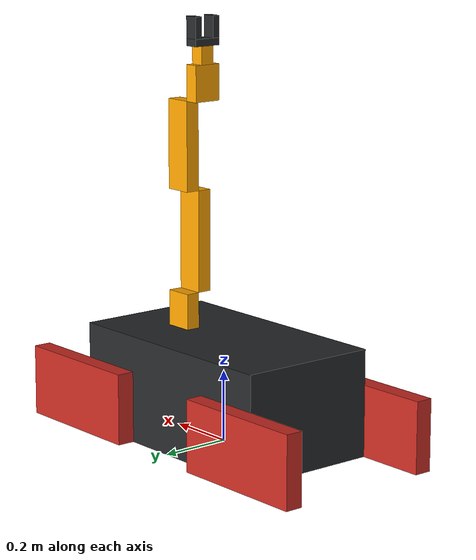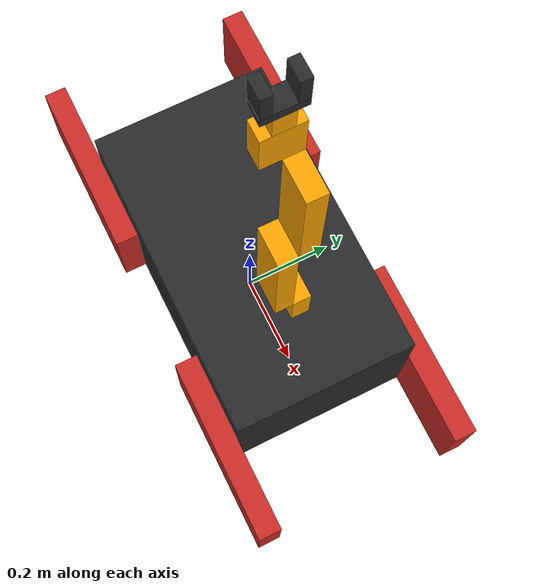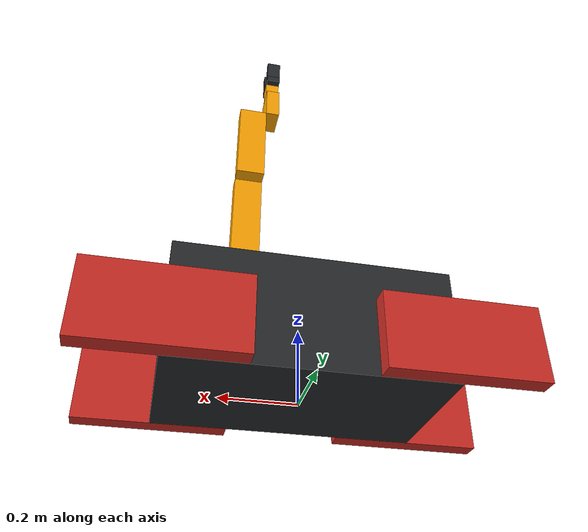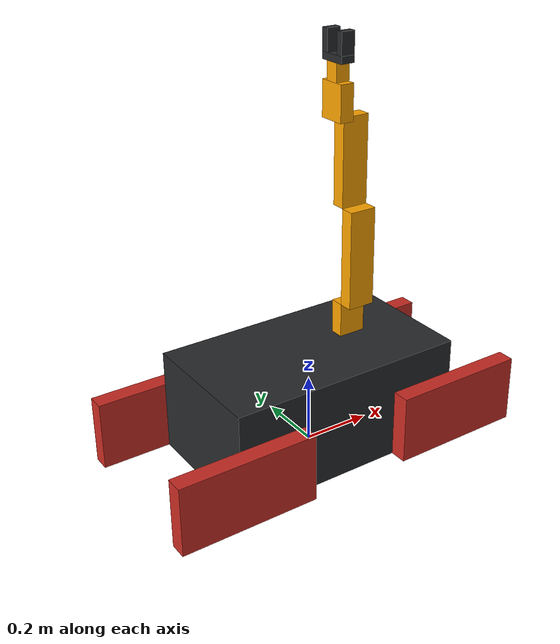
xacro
<?xml version="1.0"?>
<robot xmlns:xacro="http://www.ros.org/wiki/xacro" name="Lotti">

<!-- included files for properties etc.-->
    <xacro:include filename="urdf_inertial_shapes.xacro" />
    <xacro:include filename="urdf_materials.xacro"/>
    <xacro:include filename="Lotti_arm.xacro"/>

    <xacro:include filename="Lotti_body.xacro"/>

</robot>

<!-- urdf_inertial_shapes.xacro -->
<robot xmlns:xacro="http://www.ros.org/wiki/xacro" >

    <xacro:macro name="inertial_box" params="mass x y z *origin " >
        <inertial>
            <xacro:insert_block name="origin" />
            <mass value="${mass}" />
            <inertia ixx="${(1/12) * mass * (y*y+z*z)}" ixy="0.0" ixz="0.0"
                    iyy="${(1/12) * mass * (x*x+z*z)}" iyz="0.0"
                    izz="${(1/12) * mass * (x*x+z*z)}" />
        </inertial>
    </xacro:macro>
</robot>

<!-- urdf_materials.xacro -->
<robot xmlns:xacro="http://www.ros.org/wiki/xacro" >

    <material name="red">
        <color rgba="${204/255} ${44/255} ${36/255} 1" />
    </material>

    <material name="black">
        <color rgba ="${39/255} ${41/255} ${43/255} 1" />
    </material>

    <material name="orange">
        <color rgba ="${255/255} ${165/255} ${0/255} 1" />
    </material>

</robot>

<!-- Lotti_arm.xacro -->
<robot xmlns:xacro="http://www.ros.org/wiki/xacro" >

<!-- Rotating Base -->
    <!-- Body params for reference -->
    <xacro:property name="body_length" value="0.7"/>
    <xacro:property name="body_width" value="0.4"/>
    <xacro:property name="body_height" value="0.3"/>

    <!-- same for all links -->
    <xacro:property name="link_length" value="0.08"/>
    <xacro:property name="link_width" value="0.04"/>
    <xacro:property name="link_mass" value="0.2"/>
    <!-- changing param -->
    <xacro:property name="link1_height" value="0.10"/>

    <joint name="arm_link1_joint" type="revolute">
        <origin xyz="${body_length/2 - 0.2} ${link_width/2} ${body_height}" rpy="0 0 0"/>
        <parent link="body_link"/>
        <child link="arm_link1_link"/>
        <axis xyz="0 0 1"/>
        <limit lower="${-pi/2}" upper="${pi/2}" velocity="10" effort="100"/>
    </joint>

    <link name="arm_link1_link">
        <visual>
            <origin  xyz="0 0 ${link1_height/2}" rpy="0 0 0"/>
            <geometry>
                <box size="${link_length} ${link_width} ${link1_height}"/>
            </geometry>
            <material name="orange"/>
        </visual>
        <collision>
            <origin  xyz="0 0 ${link1_height/2}" rpy="0 0 0"/>
            <geometry>
                <box size="${link_length} ${link_width} ${link1_height}"/>
            </geometry>
        </collision>
        <xacro:inertial_box mass="${link_mass}" x="${link_length}" y="${link_width}" z="${link1_height}">
            <origin  xyz="0 0 ${link1_height/2}" rpy="0 0 0"/>
        </xacro:inertial_box>
    </link>

<!-- Lifting Base -->
    <xacro:property name="link2_height" value="0.286"/>

    <joint name="arm_link2_joint" type="revolute">
        <origin xyz="0 ${-link_width} ${link1_height}" rpy="0 0 0"/>
        <parent link="arm_link1_link"/>
        <child link="arm_link2_link"/>
        <axis xyz="0 1 0"/>
        <limit lower="${-pi/2}" upper="${pi/2}" velocity="10" effort="100"/>
    </joint>

    <link name="arm_link2_link">
        <visual>
            <origin  xyz="0 0 ${link2_height/2}" rpy="0 0 0"/>
            <geometry>
                <box size="${link_length} ${link_width} ${link2_height}"/>
            </geometry>
            <material name="orange"/>
        </visual>
        <collision>
            <origin  xyz="0 0 ${link2_height/2}" rpy="0 0 0"/>
            <geometry>
                <box size="${link_length} ${link_width} ${link2_height}"/>
            </geometry>
        </collision>
        <xacro:inertial_box mass="${link_mass}" x="${link_length}" y="${link_width}" z="${link2_height}">
            <origin  xyz="0 0 ${link2_height/2}" rpy="0 0 0"/>
        </xacro:inertial_box>
    </link>

<!-- Elbow -->
    <xacro:property name="link3_height" value="0.25"/>

    <joint name="arm_link3_joint" type="revolute">
        <origin xyz="0 ${link_width} ${link2_height}" rpy="0 0 0"/>
        <parent link="arm_link2_link"/>
        <child link="arm_link3_link"/>
        <axis xyz="0 1 0"/>
        <limit lower="${-pi/2}" upper="${pi/2}" velocity="10" effort="100"/>
    </joint>

    <link name="arm_link3_link">
        <visual>
            <origin  xyz="0 0 ${link3_height/2}" rpy="0 0 0"/>
            <geometry>
                <box size="${link_length} ${link_width} ${link3_height}"/>
            </geometry>
            <material name="orange"/>
        </visual>
        <collision>
            <origin  xyz="0 0 ${link3_height/2}" rpy="0 0 0"/>
            <geometry>
                <box size="${link_length} ${link_width} ${link3_height}"/>
            </geometry>
        </collision>
        <xacro:inertial_box mass="${link_mass}" x="${link_length}" y="${link_width}" z="${link3_height}">
            <origin  xyz="0 0 ${link3_height/2}" rpy="0 0 0"/>
        </xacro:inertial_box>
    </link>

<!-- Wrist swivel-->
    <xacro:property name="link4_height" value="0.10"/>

    <joint name="arm_link4_joint" type="revolute">
        <origin xyz="${-(link_length/2)} ${-link_width/2} ${link3_height}" rpy="0 0 0"/>
        <parent link="arm_link3_link"/>
        <child link="arm_link4_link"/>
        <axis xyz="1 0 0"/>
        <limit lower="${-pi/3}" upper="${pi/3}" velocity="10" effort="100"/>
    </joint>

    <link name="arm_link4_link">
        <visual>
            <origin  xyz="${-link_width/2} 0 ${link4_height/2}" rpy="0 0 0"/>
            <geometry>
                <box size="${link_width} ${link_length} ${link4_height}"/>
            </geometry>
            <material name="orange"/>
        </visual>
        <collision>
            <origin  xyz="${-link_width/2} 0 ${link4_height/2}" rpy="0 0 0"/>
            <geometry>
                <box size="${link_width} ${link_length} ${link4_height}"/>
            </geometry>
        </collision>
        <xacro:inertial_box mass="${link_mass}" x="${link_width}" y="${link_length}" z="${link4_height}">
            <origin  xyz="${-link_width/2} 0 ${link4_height/2}" rpy="0 0 0"/>
        </xacro:inertial_box>
    </link>

<!-- Wrist rotate -->
    <xacro:property name="link5_height" value="0.05"/>

    <joint name="arm_link5_joint" type="revolute">
        <origin xyz="${-link_width/2} 0 ${link4_height}" rpy="0 0 0"/>
        <parent link="arm_link4_link"/>
        <child link="arm_link5_link"/>
        <axis xyz="0 0 1"/>
        <limit lower="${-pi}" upper="${pi}" velocity="10" effort="100"/>
    </joint>

    <link name="arm_link5_link">
        <visual>
            <origin  xyz="0 0 ${link5_height/2}" rpy="0 0 0"/>
            <geometry>
                <box size="${link_width} ${link_width} ${link5_height}"/>
            </geometry>
            <material name="orange"/>
        </visual>
        <collision>
            <origin  xyz="0 0 ${link5_height/2}" rpy="0 0 0"/>
            <geometry>
                <box size="${link_width} ${link_width} ${link5_height}"/>
            </geometry>
        </collision>
        <xacro:inertial_box mass="${link_mass}" x="${link_width}" y="${link_width}" z="${link5_height}">
            <origin  xyz="0 0 ${link5_height/2}" rpy="0 0 0"/>
        </xacro:inertial_box>
    </link>

<!-- Gripper -->
    <xacro:property name="gripper_height" value="0.04"/>
    <xacro:property name="gripper_width" value="0.1"/>
    <xacro:property name="gripper_length" value="0.08"/>

    <joint name="arm_gripper_joint" type="fixed">
        <origin xyz="0 0 ${link5_height}" rpy="0 ${-pi/2} 0"/>
        <parent link="arm_link5_link"/>
        <child link="arm_gripper_link"/>
    </joint>

    <link name="arm_gripper_link">
        <visual>
            <origin  xyz="0.01 0 0" rpy="0 0 0"/>
            <geometry>
                <box size="0.02 0.08 0.04"/>
            </geometry>
            <material name="black"/>
        </visual>
        <visual>
            <origin xyz="0.05 0.03 0" rpy="0 0 0"/>
            <geometry>
                <box size="0.06 0.02 0.04"/>
            </geometry>
            <material name="black"/>
        </visual>
        <visual>
            <origin xyz="0.05 -0.03 0" rpy="0 0 0"/>
            <geometry>
                <box size="0.06 0.02 0.04"/>
            </geometry>
            <material name="black"/>
        </visual>
        <collision>
            <origin  xyz="${gripper_length/2} 0 0" rpy="0 0 0"/>
            <geometry>
                <box size="${gripper_length} ${gripper_width} ${gripper_height}"/>
            </geometry>
        </collision>
        <xacro:inertial_box mass="${link_mass}" x="${gripper_length}" y="${gripper_width}" z="${gripper_height}">
            <origin  xyz="${gripper_length/2} 0 0" rpy="0 0 0"/>
        </xacro:inertial_box>
    </link>

</robot>

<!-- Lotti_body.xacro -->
<robot xmlns:xacro="http://www.ros.org/wiki/xacro" >

<!-- Main Body -->
    <xacro:property name="body_length" value="0.7"/>
    <xacro:property name="body_width" value="0.4"/>
    <xacro:property name="body_height" value="0.3"/>
    <xacro:property name="body_mass" value="25.0"/>

    <link name="body_link">
        <visual>
            <origin rpy="0 0 0" xyz="0 0 ${(body_height/2)}"/>
            <geometry>
                <box size="${body_length} ${body_width} ${body_height}"/>
            </geometry>
            <material name="black"/>
        </visual>
        <collision>
            <origin rpy="0 0 0" xyz="0 0 ${(body_height/2)}"/>
            <geometry>
                <box size="${body_length} ${body_width} ${body_height}"/>
            </geometry>
        </collision>
        <xacro:inertial_box mass="${body_mass}" x="${body_length}" y="${body_width}" z="${body_height}">
            <origin rpy="0 0 0" xyz="0 0 ${(body_height/2)}"/>
        </xacro:inertial_box>
    </link>

<!-- Flipper -->
    <xacro:property name="flipper_length" value="0.4"/>
    <xacro:property name="flipper_width" value="0.05"/>
    <xacro:property name="flipper_height" value="0.2"/>
    <xacro:property name="flipper_mass" value="3.0"/>

<!-- Flipper link macro -->
    <xacro:macro name="flipper_link" params="position">
        <link name="flipper_${position}_link">
            <visual>
                <origin xyz="${(flipper_height/2) - (flipper_length/2)} 0 0" rpy="0 0 0"/>
                <geometry>
                    <box size="${flipper_length} ${flipper_width} ${flipper_height}"/>
                </geometry>
                <material name="red"/>
            </visual>
            <collision>
                <origin xyz="${(flipper_height/2) - (flipper_length/2)} 0 0" rpy="0 0 0"/>
                <geometry>
                    <box size="${flipper_length} ${flipper_width} ${flipper_height}"/>
                </geometry>
            </collision>
            <xacro:inertial_box mass="${flipper_mass}" x="${flipper_length}" y="${flipper_width}" z="${flipper_height}">
                <origin xyz="${(flipper_height/2) - (flipper_length/2)} 0 0" rpy="0 0 0"/>
            </xacro:inertial_box>
        </link>
    </xacro:macro>

<!-- Front Left Flipper-->
    <joint name="flipper_fr_joint" type="continuous">
        <origin xyz="${body_length/2 - flipper_height/2} ${(body_width/2) + (flipper_width/2)} ${flipper_height/2}" rpy="0 ${pi} 0"/>
        <parent link="body_link"/>
        <child link="flipper_fr_link"/>
        <axis xyz="0 1 0"/>
    </joint>

    <xacro:flipper_link position="fr"/>

<!-- Front Right Flipper-->
    <joint name="flipper_fl_joint" type="continuous">
        <origin xyz="${(body_length/2) - (flipper_height/2)} ${-(body_width/2) - (flipper_width/2)} ${flipper_height/2}" rpy="0 ${pi} 0"/>
        <parent link="body_link"/>
        <child link="flipper_fl_link"/>
        <axis xyz="0 1 0"/>
    </joint>

    <xacro:flipper_link position="fl"/>

<!-- Rear Left Flipper-->
    <joint name="flipper_rr_joint" type="continuous">
        <origin xyz="${-(body_length/2) + (flipper_height/2)} ${(body_width/2) + (flipper_width/2)} ${flipper_height/2}" rpy="0 0 0"/>
        <parent link="body_link"/>
        <child link="flipper_rr_link"/>
        <axis xyz="0 -1 0"/>
    </joint>

    <xacro:flipper_link position="rr"/>

<!-- Rear Right Flipper-->
    <joint name="flipper_rl_joint" type="continuous">
        <origin xyz="${-(body_length/2) + (flipper_height/2)} ${-(body_width/2) - (flipper_width/2)} ${flipper_height/2}" rpy="0 0 0"/>
        <parent link="body_link"/>
        <child link="flipper_rl_link"/>
        <axis xyz="0 -1 0"/>
    </joint>

    <xacro:flipper_link position="rl"/>

</robot>
